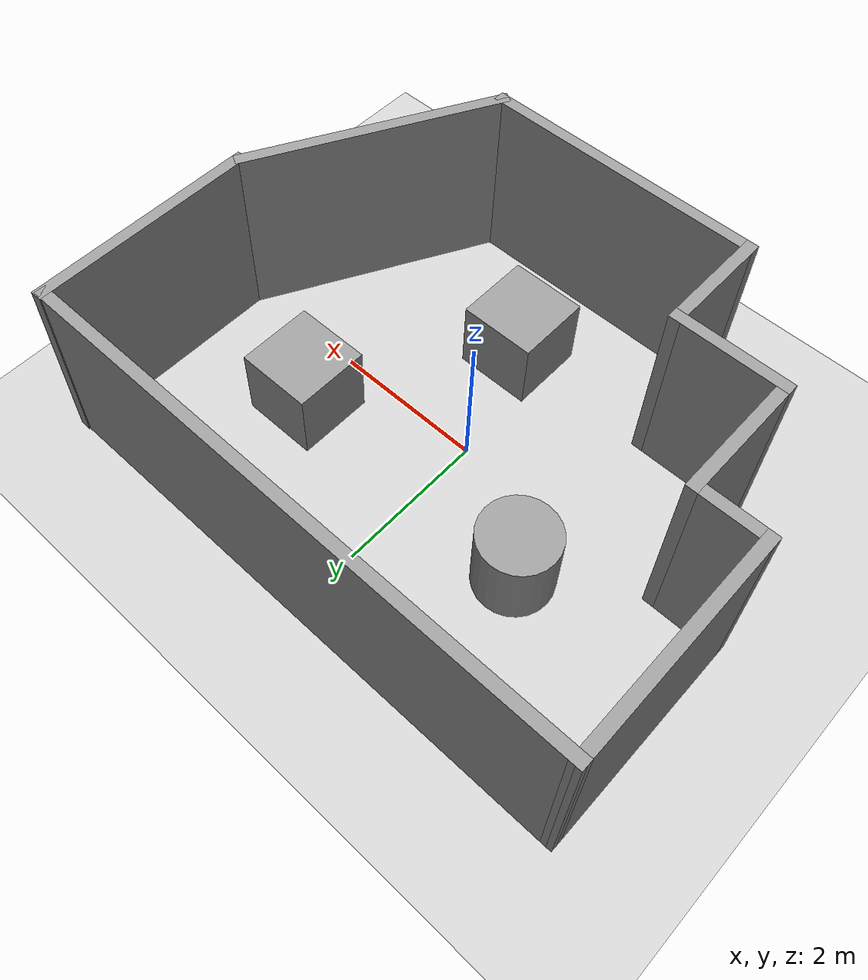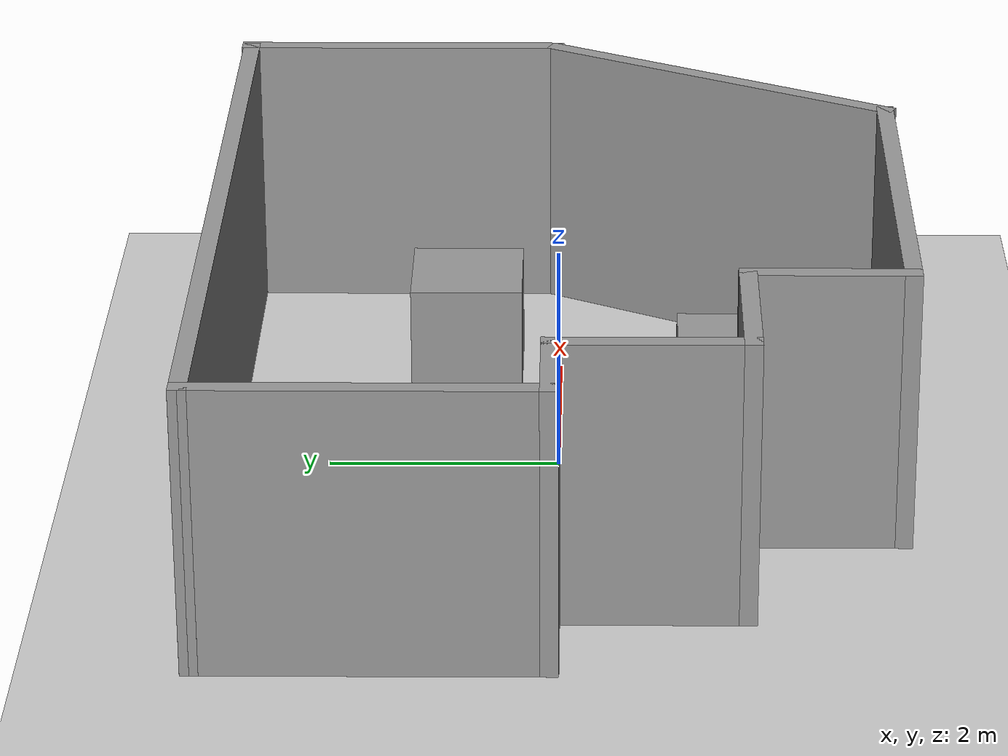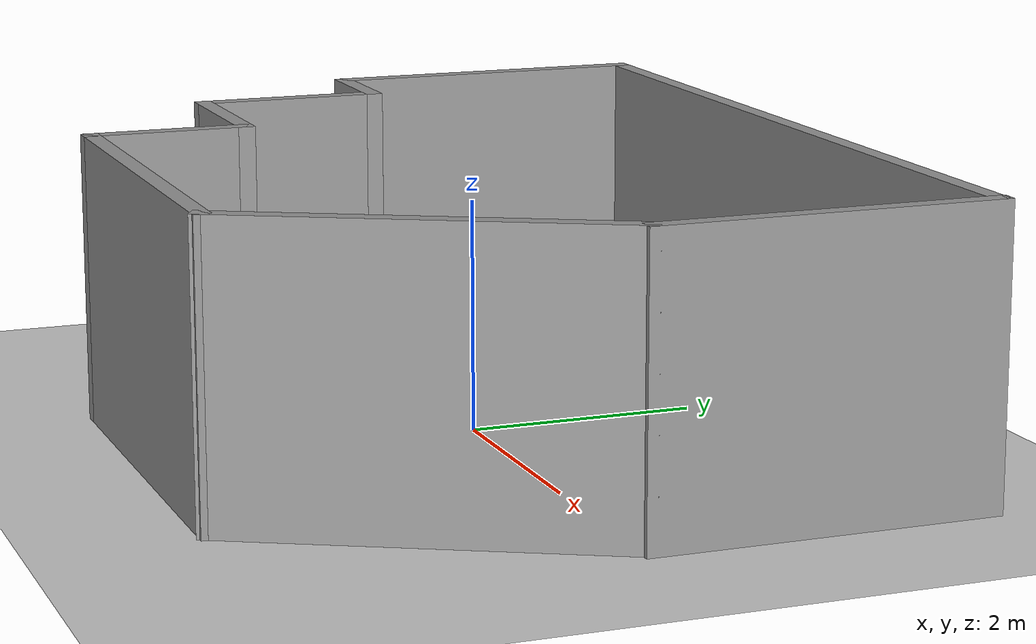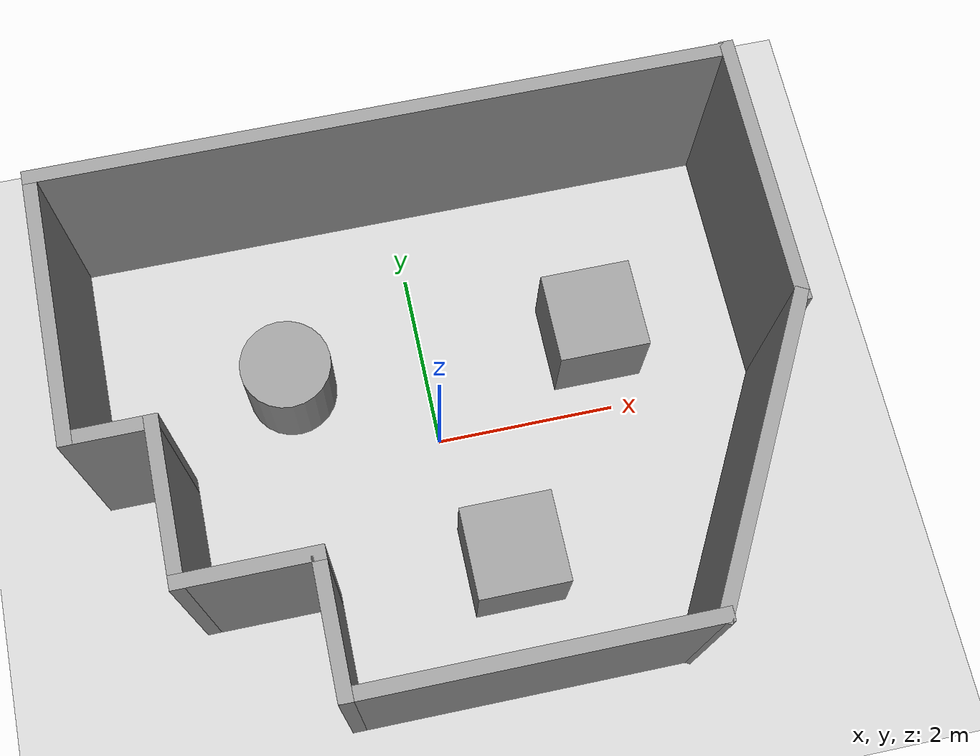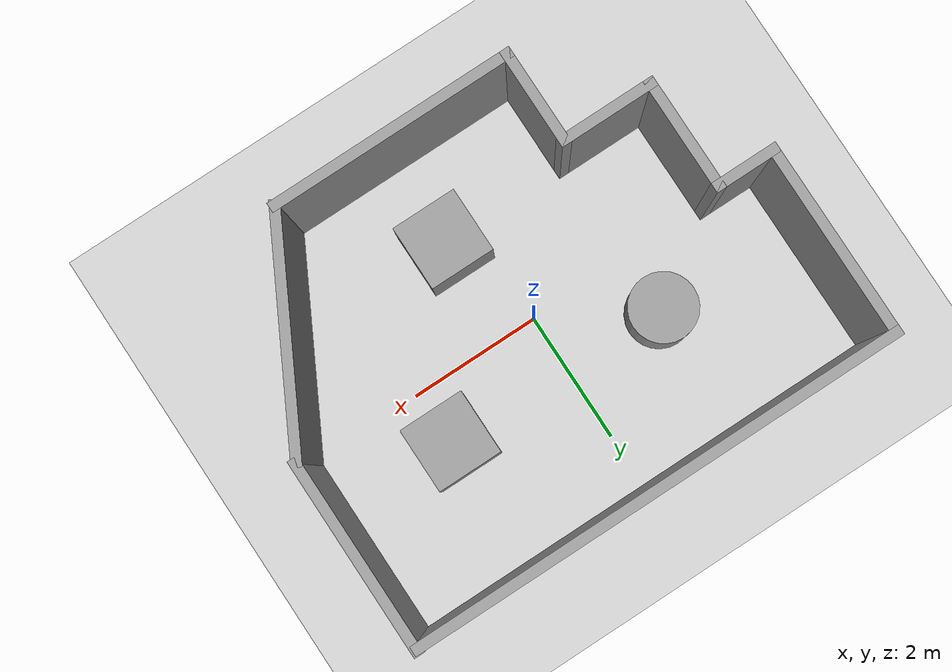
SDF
<sdf version="1.7">
 <world name="default">
  <light name="sun" type="directional">
   <pose>0 0 10 0 -0 0</pose>
   <diffuse>0.8 0.8 0.8 1</diffuse>
   <specular>0.2 0.2 0.2 1</specular>
   <attenuation>
    <range>1000</range>
    <constant>0.9</constant>
    <linear>0.01</linear>
    <quadratic>0.001</quadratic>
   </attenuation>
   <direction>-0.5 0.1 -0.9</direction>
   <spot><inner_angle>0</inner_angle><outer_angle>0</outer_angle><falloff>0</falloff></spot>
  </light>
  <model name="ground_plane">
   <static>1</static>
   <link name="link">
    <collision name="collision">
     <geometry><plane><normal>0 0 1</normal><size>100 100</size></plane></geometry>
     <surface><friction><ode><mu>100</mu><mu2>50</mu2></ode></friction></surface>
    </collision>
    <visual name="visual">
     <cast_shadows>0</cast_shadows>
     <geometry><plane><normal>0 0 1</normal><size>100 100</size></plane></geometry>
     <material>
      <script><uri>file://media/materials/scripts/gazebo.material</uri><name>Gazebo/Grey</name></script>
     </material>
    </visual>
   </link>
  </model>
  <gravity>0 0 -9.8</gravity>
  <magnetic_field>6e-06 2.3e-05 -4.2e-05</magnetic_field>
  <atmosphere type="adiabatic"/>
  <physics type="ode">
   <max_step_size>0.001</max_step_size>
   <real_time_factor>1</real_time_factor>
   <real_time_update_rate>1000</real_time_update_rate>
  </physics>
  <scene><ambient>0.4 0.4 0.4 1</ambient><background>0.7 0.7 0.7 1</background><shadows>1</shadows></scene>
  <audio><device>default</device></audio>
  <spherical_coordinates>
   <surface_model>EARTH_WGS84</surface_model>
   <latitude_deg>0</latitude_deg>
   <longitude_deg>0</longitude_deg>
   <elevation>0</elevation>
   <heading_deg>0</heading_deg>
  </spherical_coordinates>
  <model name="juliebot_world.world">
   <pose>0.007667 -0.014206 0 0 -0 0</pose>
   <link name="Wall_10">
    <collision name="Wall_10_Collision">
     <geometry><box><size>7.51921 0.15 2.5</size></box></geometry>
     <pose>0 0 1.25 0 -0 0</pose>
    </collision>
    <visual name="Wall_10_Visual">
     <pose>0 0 1.25 0 -0 0</pose>
     <geometry><box><size>7.51921 0.15 2.5</size></box></geometry>
     <material>
      <script><uri>file://media/materials/scripts/gazebo.material</uri><name>Gazebo/Grey</name></script>
      <ambient>1 1 1 1</ambient>
     </material>
     <meta><layer>0</layer></meta>
    </visual>
    <pose>-0.013192 2.90663 0 0 -0 -0.00124</pose>
   </link>
   <link name="Wall_11">
    <collision name="Wall_11_Collision">
     <geometry><box><size>3 0.15 2.5</size></box></geometry>
     <pose>0 0 1.25 0 -0 0</pose>
    </collision>
    <visual name="Wall_11_Visual">
     <pose>0 0 1.25 0 -0 0</pose>
     <geometry><box><size>3 0.15 2.5</size></box></geometry>
     <material>
      <script><uri>file://media/materials/scripts/gazebo.material</uri><name>Gazebo/Grey</name></script>
      <ambient>1 1 1 1</ambient>
     </material>
     <meta><layer>0</layer></meta>
    </visual>
    <pose>3.69786 1.49028 0 0 -0 -1.5708</pose>
   </link>
   <link name="Wall_12">
    <collision name="Wall_12_Collision">
     <geometry><box><size>3.48332 0.15 2.5</size></box></geometry>
     <pose>0 0 1.25 0 -0 0</pose>
    </collision>
    <visual name="Wall_12_Visual">
     <pose>0 0 1.25 0 -0 0</pose>
     <geometry><box><size>3.48332 0.15 2.5</size></box></geometry>
     <material>
      <script><uri>file://media/materials/scripts/gazebo.material</uri><name>Gazebo/Grey</name></script>
      <ambient>1 1 1 1</ambient>
     </material>
     <meta><layer>0</layer></meta>
    </visual>
    <pose>2.88681 -1.41837 0 0 -0 -2.06095</pose>
   </link>
   <link name="Wall_13">
    <collision name="Wall_13_Collision">
     <geometry><box><size>3.75 0.15 2.5</size></box></geometry>
     <pose>0 0 1.25 0 -0 0</pose>
    </collision>
    <visual name="Wall_13_Visual">
     <pose>0 0 1.25 0 -0 0</pose>
     <geometry><box><size>3.75 0.15 2.5</size></box></geometry>
     <material>
      <script><uri>file://media/materials/scripts/gazebo.material</uri><name>Gazebo/Grey</name></script>
      <ambient>1 1 1 1</ambient>
     </material>
     <meta><layer>0</layer></meta>
    </visual>
    <pose>0.302208 -2.8888 0 0 -0 3.14159</pose>
   </link>
   <link name="Wall_14">
    <collision name="Wall_14_Collision">
     <geometry><box><size>1.5 0.15 2.5</size></box></geometry>
     <pose>0 0 1.25 0 -0 0</pose>
    </collision>
    <visual name="Wall_14_Visual">
     <pose>0 0 1.25 0 -0 0</pose>
     <geometry><box><size>1.5 0.15 2.5</size></box></geometry>
     <material>
      <script><uri>file://media/materials/scripts/gazebo.material</uri><name>Gazebo/Grey</name></script>
      <ambient>1 1 1 1</ambient>
     </material>
     <meta><layer>0</layer></meta>
    </visual>
    <pose>-1.49779 -2.2138 0 0 -0 1.5708</pose>
   </link>
   <link name="Wall_15">
    <collision name="Wall_15_Collision">
     <geometry><box><size>1.5 0.15 2.5</size></box></geometry>
     <pose>0 0 1.25 0 -0 0</pose>
    </collision>
    <visual name="Wall_15_Visual">
     <pose>0 0 1.25 0 -0 0</pose>
     <geometry><box><size>1.5 0.15 2.5</size></box></geometry>
     <material>
      <script><uri>file://media/materials/scripts/gazebo.material</uri><name>Gazebo/Grey</name></script>
      <ambient>1 1 1 1</ambient>
     </material>
     <meta><layer>0</layer></meta>
    </visual>
    <pose>-2.17279 -1.5388 0 0 -0 3.14159</pose>
   </link>
   <link name="Wall_16">
    <collision name="Wall_16_Collision">
     <geometry><box><size>1.75 0.15 2.5</size></box></geometry>
     <pose>0 0 1.25 0 -0 0</pose>
    </collision>
    <visual name="Wall_16_Visual">
     <pose>0 0 1.25 0 -0 0</pose>
     <geometry><box><size>1.75 0.15 2.5</size></box></geometry>
     <material>
      <script><uri>file://media/materials/scripts/gazebo.material</uri><name>Gazebo/Grey</name></script>
      <ambient>1 1 1 1</ambient>
     </material>
     <meta><layer>0</layer></meta>
    </visual>
    <pose>-2.84779 -0.738804 0 0 -0 1.5708</pose>
   </link>
   <link name="Wall_17">
    <collision name="Wall_17_Collision">
     <geometry><box><size>1 0.15 2.5</size></box></geometry>
     <pose>0 0 1.25 0 -0 0</pose>
    </collision>
    <visual name="Wall_17_Visual">
     <pose>0 0 1.25 0 -0 0</pose>
     <geometry><box><size>1 0.15 2.5</size></box></geometry>
     <material>
      <script><uri>file://media/materials/scripts/gazebo.material</uri><name>Gazebo/Grey</name></script>
      <ambient>1 1 1 1</ambient>
     </material>
     <meta><layer>0</layer></meta>
    </visual>
    <pose>-3.27279 0.061196 0 0 -0 3.14159</pose>
   </link>
   <link name="Wall_18">
    <collision name="Wall_18_Collision">
     <geometry><box><size>3 0.15 2.5</size></box></geometry>
     <pose>0 0 1.25 0 -0 0</pose>
    </collision>
    <visual name="Wall_18_Visual">
     <pose>0 0 1.25 0 -0 0</pose>
     <geometry><box><size>3 0.15 2.5</size></box></geometry>
     <material>
      <script><uri>file://media/materials/scripts/gazebo.material</uri><name>Gazebo/Grey</name></script>
      <ambient>1 1 1 1</ambient>
     </material>
     <meta><layer>0</layer></meta>
    </visual>
    <pose>-3.69779 1.4862 0 0 -0 1.5708</pose>
   </link>
   <static>1</static>
  </model>
  <model name="unit_cylinder">
   <pose>-1.52476 0.917318 0.499992 -3e-06 4e-06 0</pose>
   <link name="link">
    <inertial>
     <mass>1</mass>
     <inertia><ixx>0.145833</ixx><ixy>0</ixy><ixz>0</ixz><iyy>0.145833</iyy><iyz>0</iyz><izz>0.125</izz></inertia>
    </inertial>
    <collision name="collision">
     <geometry><cylinder><radius>0.5</radius><length>1</length></cylinder></geometry>
    </collision>
    <visual name="visual">
     <geometry><cylinder><radius>0.5</radius><length>1</length></cylinder></geometry>
     <material>
      <script><name>Gazebo/Grey</name><uri>file://media/materials/scripts/gazebo.material</uri></script>
     </material>
    </visual>
   </link>
  </model>
  <model name="unit_box">
   <pose>1.91948 0.842979 0.499995 0 1e-05 0</pose>
   <link name="link">
    <inertial>
     <mass>1</mass>
     <inertia>
      <ixx>0.166667</ixx>
      <ixy>0</ixy>
      <ixz>0</ixz>
      <iyy>0.166667</iyy>
      <iyz>0</iyz>
      <izz>0.166667</izz>
     </inertia>
    </inertial>
    <collision name="collision"><geometry><box><size>1 1 1</size></box></geometry></collision>
    <visual name="visual">
     <geometry><box><size>1 1 1</size></box></geometry>
     <material>
      <script><name>Gazebo/Grey</name><uri>file://media/materials/scripts/gazebo.material</uri></script>
     </material>
    </visual>
   </link>
  </model>
  <model name="unit_box_0">
   <pose>0.48429 -1.53694 0.499995 1e-05 -0 0</pose>
   <link name="link">
    <inertial>
     <mass>1</mass>
     <inertia>
      <ixx>0.166667</ixx>
      <ixy>0</ixy>
      <ixz>0</ixz>
      <iyy>0.166667</iyy>
      <iyz>0</iyz>
      <izz>0.166667</izz>
     </inertia>
    </inertial>
    <collision name="collision"><geometry><box><size>1 1 1</size></box></geometry></collision>
    <visual name="visual">
     <geometry><box><size>1 1 1</size></box></geometry>
     <material>
      <script><name>Gazebo/Grey</name><uri>file://media/materials/scripts/gazebo.material</uri></script>
     </material>
    </visual>
   </link>
  </model>
 </world>
</sdf>
